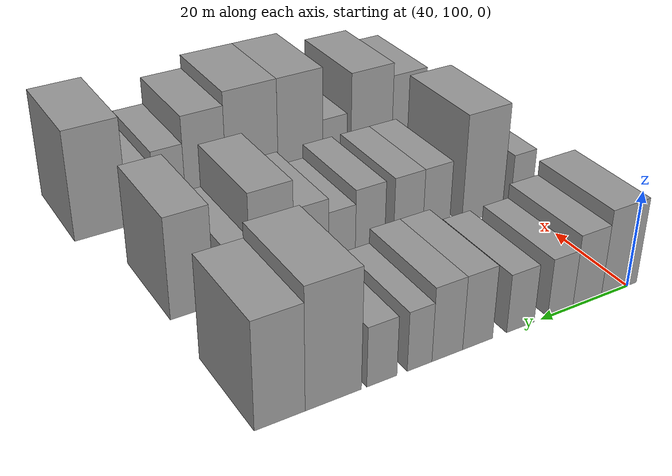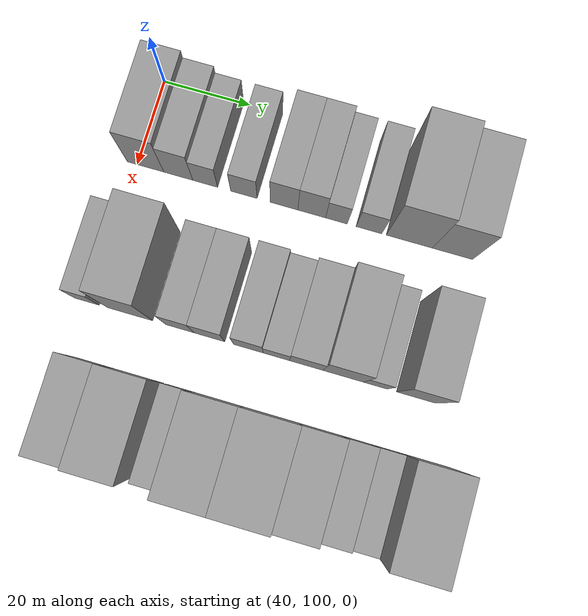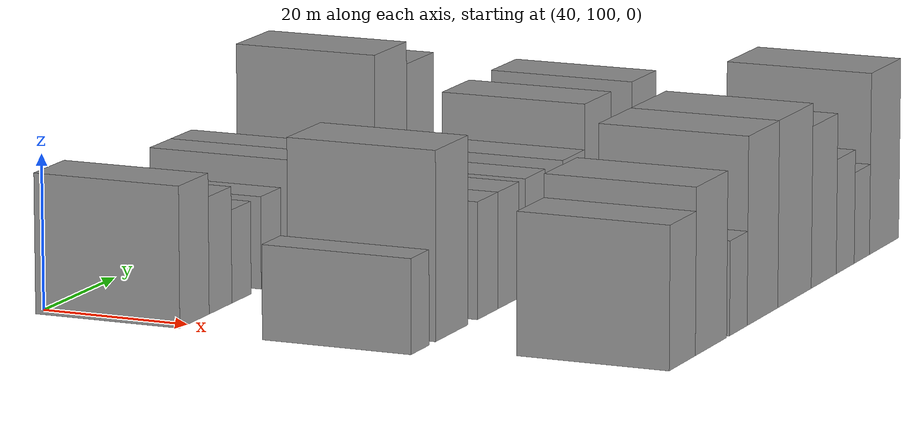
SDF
<sdf version="1.6">
 <world name="default">
  <model name="building_50">
   <static>1</static>
   <pose>50.0000 101.9920 0 0.000000 0.000000 0.000000</pose>
   <link name="link">
    <pose>0 0 9.00 0 0 0</pose>
    <collision name="collision"><geometry><box><size>20.0000 8.4146 18.0000</size></box></geometry></collision>
    <visual name="visual">
     <cast_shadows>0</cast_shadows>
     <geometry><box><size>20.0000 8.4146 18.0000</size></box></geometry>
     <material>
      <script>
       <uri>model://grey_wall/materials/scripts</uri>
       <uri>model://grey_wall/materials/textures</uri>
       <name>vrc/grey_wall</name>
      </script>
     </material>
    </visual>
   </link>
  </model>
  <model name="building_51">
   <static>1</static>
   <pose>50.0000 109.5094 0 0.000000 0.000000 0.000000</pose>
   <link name="link">
    <pose>0 0 7.50 0 0 0</pose>
    <collision name="collision"><geometry><box><size>20.0000 6.6202 15.0000</size></box></geometry></collision>
    <visual name="visual">
     <cast_shadows>0</cast_shadows>
     <geometry><box><size>20.0000 6.6202 15.0000</size></box></geometry>
     <material>
      <script>
       <uri>model://grey_wall/materials/scripts</uri>
       <uri>model://grey_wall/materials/textures</uri>
       <name>vrc/grey_wall</name>
      </script>
     </material>
    </visual>
   </link>
  </model>
  <model name="building_52">
   <static>1</static>
   <pose>50.0000 115.6537 0 0.000000 0.000000 0.000000</pose>
   <link name="link">
    <pose>0 0 6.00 0 0 0</pose>
    <collision name="collision"><geometry><box><size>20.0000 5.6683 12.0000</size></box></geometry></collision>
    <visual name="visual">
     <cast_shadows>0</cast_shadows>
     <geometry><box><size>20.0000 5.6683 12.0000</size></box></geometry>
     <material>
      <script>
       <uri>model://grey_wall/materials/scripts</uri>
       <uri>model://grey_wall/materials/textures</uri>
       <name>vrc/grey_wall</name>
      </script>
     </material>
    </visual>
   </link>
  </model>
  <model name="building_53">
   <static>1</static>
   <pose>50.0000 124.4864 0 0.000000 0.000000 0.000000</pose>
   <link name="link">
    <pose>0 0 6.00 0 0 0</pose>
    <collision name="collision"><geometry><box><size>20.0000 5.9971 12.0000</size></box></geometry></collision>
    <visual name="visual">
     <cast_shadows>0</cast_shadows>
     <geometry><box><size>20.0000 5.9971 12.0000</size></box></geometry>
     <material>
      <script>
       <uri>model://grey_wall/materials/scripts</uri>
       <uri>model://grey_wall/materials/textures</uri>
       <name>vrc/grey_wall</name>
      </script>
     </material>
    </visual>
   </link>
  </model>
  <model name="building_54">
   <static>1</static>
   <pose>50.0000 133.6102 0 0.000000 0.000000 0.000000</pose>
   <link name="link">
    <pose>0 0 7.50 0 0 0</pose>
    <collision name="collision"><geometry><box><size>20.0000 6.2505 15.0000</size></box></geometry></collision>
    <visual name="visual">
     <cast_shadows>0</cast_shadows>
     <geometry><box><size>20.0000 6.2505 15.0000</size></box></geometry>
     <material>
      <script>
       <uri>model://grey_wall/materials/scripts</uri>
       <uri>model://grey_wall/materials/textures</uri>
       <name>vrc/grey_wall</name>
      </script>
     </material>
    </visual>
   </link>
  </model>
  <model name="building_55">
   <static>1</static>
   <pose>50.0000 139.8593 0 0.000000 0.000000 0.000000</pose>
   <link name="link">
    <pose>0 0 7.50 0 0 0</pose>
    <collision name="collision"><geometry><box><size>20.0000 6.2476 15.0000</size></box></geometry></collision>
    <visual name="visual">
     <cast_shadows>0</cast_shadows>
     <geometry><box><size>20.0000 6.2476 15.0000</size></box></geometry>
     <material>
      <script>
       <uri>model://grey_wall/materials/scripts</uri>
       <uri>model://grey_wall/materials/textures</uri>
       <name>vrc/grey_wall</name>
      </script>
     </material>
    </visual>
   </link>
  </model>
  <model name="building_56">
   <static>1</static>
   <pose>50.0000 145.4303 0 0.000000 0.000000 0.000000</pose>
   <link name="link">
    <pose>0 0 6.00 0 0 0</pose>
    <collision name="collision"><geometry><box><size>20.0000 4.8945 12.0000</size></box></geometry></collision>
    <visual name="visual">
     <cast_shadows>0</cast_shadows>
     <geometry><box><size>20.0000 4.8945 12.0000</size></box></geometry>
     <material>
      <script>
       <uri>model://grey_wall/materials/scripts</uri>
       <uri>model://grey_wall/materials/textures</uri>
       <name>vrc/grey_wall</name>
      </script>
     </material>
    </visual>
   </link>
  </model>
  <model name="building_57">
   <static>1</static>
   <pose>50.0000 152.7708 0 0.000000 0.000000 0.000000</pose>
   <link name="link">
    <pose>0 0 6.00 0 0 0</pose>
    <collision name="collision"><geometry><box><size>20.0000 5.7866 12.0000</size></box></geometry></collision>
    <visual name="visual">
     <cast_shadows>0</cast_shadows>
     <geometry><box><size>20.0000 5.7866 12.0000</size></box></geometry>
     <material>
      <script>
       <uri>model://grey_wall/materials/scripts</uri>
       <uri>model://grey_wall/materials/textures</uri>
       <name>vrc/grey_wall</name>
      </script>
     </material>
    </visual>
   </link>
  </model>
  <model name="building_58">
   <static>1</static>
   <pose>50.0000 161.8327 0 0.000000 0.000000 0.000000</pose>
   <link name="link">
    <pose>0 0 12.00 0 0 0</pose>
    <collision name="collision"><geometry><box><size>20.0000 10.3371 24.0000</size></box></geometry></collision>
    <visual name="visual">
     <cast_shadows>0</cast_shadows>
     <geometry><box><size>20.0000 10.3371 24.0000</size></box></geometry>
     <material>
      <script>
       <uri>model://grey_wall/materials/scripts</uri>
       <uri>model://grey_wall/materials/textures</uri>
       <name>vrc/grey_wall</name>
      </script>
     </material>
    </visual>
   </link>
  </model>
  <model name="building_59">
   <static>1</static>
   <pose>50.0000 171.4739 0 0.000000 0.000000 0.000000</pose>
   <link name="link">
    <pose>0 0 10.50 0 0 0</pose>
    <collision name="collision"><geometry><box><size>20.0000 8.9453 21.0000</size></box></geometry></collision>
    <visual name="visual">
     <cast_shadows>0</cast_shadows>
     <geometry><box><size>20.0000 8.9453 21.0000</size></box></geometry>
     <material>
      <script>
       <uri>model://grey_wall/materials/scripts</uri>
       <uri>model://grey_wall/materials/textures</uri>
       <name>vrc/grey_wall</name>
      </script>
     </material>
    </visual>
   </link>
  </model>
  <model name="building_131">
   <static>1</static>
   <pose>82.0000 99.0028 0 0.000000 0.000000 0.000000</pose>
   <link name="link">
    <pose>0 0 6.00 0 0 0</pose>
    <collision name="collision"><geometry><box><size>20.0000 5.4487 12.0000</size></box></geometry></collision>
    <visual name="visual">
     <cast_shadows>0</cast_shadows>
     <geometry><box><size>20.0000 5.4487 12.0000</size></box></geometry>
     <material>
      <script>
       <uri>model://grey_wall/materials/scripts</uri>
       <uri>model://grey_wall/materials/textures</uri>
       <name>vrc/grey_wall</name>
      </script>
     </material>
    </visual>
   </link>
  </model>
  <model name="building_132">
   <static>1</static>
   <pose>82.0000 108.7247 0 0.000000 0.000000 0.000000</pose>
   <link name="link">
    <pose>0 0 12.00 0 0 0</pose>
    <collision name="collision"><geometry><box><size>20.0000 9.9951 24.0000</size></box></geometry></collision>
    <visual name="visual">
     <cast_shadows>0</cast_shadows>
     <geometry><box><size>20.0000 9.9951 24.0000</size></box></geometry>
     <material>
      <script>
       <uri>model://grey_wall/materials/scripts</uri>
       <uri>model://grey_wall/materials/textures</uri>
       <name>vrc/grey_wall</name>
      </script>
     </material>
    </visual>
   </link>
  </model>
  <model name="building_133">
   <static>1</static>
   <pose>82.0000 119.8972 0 0.000000 0.000000 0.000000</pose>
   <link name="link">
    <pose>0 0 7.50 0 0 0</pose>
    <collision name="collision"><geometry><box><size>20.0000 6.3500 15.0000</size></box></geometry></collision>
    <visual name="visual">
     <cast_shadows>0</cast_shadows>
     <geometry><box><size>20.0000 6.3500 15.0000</size></box></geometry>
     <material>
      <script>
       <uri>model://grey_wall/materials/scripts</uri>
       <uri>model://grey_wall/materials/textures</uri>
       <name>vrc/grey_wall</name>
      </script>
     </material>
    </visual>
   </link>
  </model>
  <model name="building_134">
   <static>1</static>
   <pose>82.0000 126.4365 0 0.000000 0.000000 0.000000</pose>
   <link name="link">
    <pose>0 0 7.50 0 0 0</pose>
    <collision name="collision"><geometry><box><size>20.0000 6.7286 15.0000</size></box></geometry></collision>
    <visual name="visual">
     <cast_shadows>0</cast_shadows>
     <geometry><box><size>20.0000 6.7286 15.0000</size></box></geometry>
     <material>
      <script>
       <uri>model://grey_wall/materials/scripts</uri>
       <uri>model://grey_wall/materials/textures</uri>
       <name>vrc/grey_wall</name>
      </script>
     </material>
    </visual>
   </link>
  </model>
  <model name="building_135">
   <static>1</static>
   <pose>82.0000 135.0624 0 0.000000 0.000000 0.000000</pose>
   <link name="link">
    <pose>0 0 7.50 0 0 0</pose>
    <collision name="collision"><geometry><box><size>20.0000 6.5232 15.0000</size></box></geometry></collision>
    <visual name="visual">
     <cast_shadows>0</cast_shadows>
     <geometry><box><size>20.0000 6.5232 15.0000</size></box></geometry>
     <material>
      <script>
       <uri>model://grey_wall/materials/scripts</uri>
       <uri>model://grey_wall/materials/textures</uri>
       <name>vrc/grey_wall</name>
      </script>
     </material>
    </visual>
   </link>
  </model>
  <model name="building_136">
   <static>1</static>
   <pose>82.0000 141.2162 0 0.000000 0.000000 0.000000</pose>
   <link name="link">
    <pose>0 0 6.00 0 0 0</pose>
    <collision name="collision"><geometry><box><size>20.0000 5.7842 12.0000</size></box></geometry></collision>
    <visual name="visual">
     <cast_shadows>0</cast_shadows>
     <geometry><box><size>20.0000 5.7842 12.0000</size></box></geometry>
     <material>
      <script>
       <uri>model://grey_wall/materials/scripts</uri>
       <uri>model://grey_wall/materials/textures</uri>
       <name>vrc/grey_wall</name>
      </script>
     </material>
    </visual>
   </link>
  </model>
  <model name="building_137">
   <static>1</static>
   <pose>82.0000 147.7558 0 0.000000 0.000000 0.000000</pose>
   <link name="link">
    <pose>0 0 7.50 0 0 0</pose>
    <collision name="collision"><geometry><box><size>20.0000 7.2950 15.0000</size></box></geometry></collision>
    <visual name="visual">
     <cast_shadows>0</cast_shadows>
     <geometry><box><size>20.0000 7.2950 15.0000</size></box></geometry>
     <material>
      <script>
       <uri>model://grey_wall/materials/scripts</uri>
       <uri>model://grey_wall/materials/textures</uri>
       <name>vrc/grey_wall</name>
      </script>
     </material>
    </visual>
   </link>
  </model>
  <model name="building_138">
   <static>1</static>
   <pose>82.0000 155.8484 0 0.000000 0.000000 0.000000</pose>
   <link name="link">
    <pose>0 0 10.50 0 0 0</pose>
    <collision name="collision"><geometry><box><size>20.0000 8.8904 21.0000</size></box></geometry></collision>
    <visual name="visual">
     <cast_shadows>0</cast_shadows>
     <geometry><box><size>20.0000 8.8904 21.0000</size></box></geometry>
     <material>
      <script>
       <uri>model://grey_wall/materials/scripts</uri>
       <uri>model://grey_wall/materials/textures</uri>
       <name>vrc/grey_wall</name>
      </script>
     </material>
    </visual>
   </link>
  </model>
  <model name="building_139">
   <static>1</static>
   <pose>82.0000 162.9040 0 0.000000 0.000000 0.000000</pose>
   <link name="link">
    <pose>0 0 6.00 0 0 0</pose>
    <collision name="collision"><geometry><box><size>20.0000 5.2207 12.0000</size></box></geometry></collision>
    <visual name="visual">
     <cast_shadows>0</cast_shadows>
     <geometry><box><size>20.0000 5.2207 12.0000</size></box></geometry>
     <material>
      <script>
       <uri>model://grey_wall/materials/scripts</uri>
       <uri>model://grey_wall/materials/textures</uri>
       <name>vrc/grey_wall</name>
      </script>
     </material>
    </visual>
   </link>
  </model>
  <model name="building_140">
   <static>1</static>
   <pose>82.0000 171.7312 0 0.000000 0.000000 0.000000</pose>
   <link name="link">
    <pose>0 0 10.50 0 0 0</pose>
    <collision name="collision"><geometry><box><size>20.0000 8.4339 21.0000</size></box></geometry></collision>
    <visual name="visual">
     <cast_shadows>0</cast_shadows>
     <geometry><box><size>20.0000 8.4339 21.0000</size></box></geometry>
     <material>
      <script>
       <uri>model://grey_wall/materials/scripts</uri>
       <uri>model://grey_wall/materials/textures</uri>
       <name>vrc/grey_wall</name>
      </script>
     </material>
    </visual>
   </link>
  </model>
  <model name="building_206">
   <static>1</static>
   <pose>114.0000 105.2028 0 0.000000 0.000000 0.000000</pose>
   <link name="link">
    <pose>0 0 9.00 0 0 0</pose>
    <collision name="collision"><geometry><box><size>20.0000 8.5667 18.0000</size></box></geometry></collision>
    <visual name="visual">
     <cast_shadows>0</cast_shadows>
     <geometry><box><size>20.0000 8.5667 18.0000</size></box></geometry>
     <material>
      <script>
       <uri>model://grey_wall/materials/scripts</uri>
       <uri>model://grey_wall/materials/textures</uri>
       <name>vrc/grey_wall</name>
      </script>
     </material>
    </visual>
   </link>
  </model>
  <model name="building_207">
   <static>1</static>
   <pose>114.0000 114.7116 0 0.000000 0.000000 0.000000</pose>
   <link name="link">
    <pose>0 0 10.50 0 0 0</pose>
    <collision name="collision"><geometry><box><size>20.0000 10.4510 21.0000</size></box></geometry></collision>
    <visual name="visual">
     <cast_shadows>0</cast_shadows>
     <geometry><box><size>20.0000 10.4510 21.0000</size></box></geometry>
     <material>
      <script>
       <uri>model://grey_wall/materials/scripts</uri>
       <uri>model://grey_wall/materials/textures</uri>
       <name>vrc/grey_wall</name>
      </script>
     </material>
    </visual>
   </link>
  </model>
  <model name="building_208">
   <static>1</static>
   <pose>114.0000 123.9359 0 0.000000 0.000000 0.000000</pose>
   <link name="link">
    <pose>0 0 6.00 0 0 0</pose>
    <collision name="collision"><geometry><box><size>20.0000 5.9975 12.0000</size></box></geometry></collision>
    <visual name="visual">
     <cast_shadows>0</cast_shadows>
     <geometry><box><size>20.0000 5.9975 12.0000</size></box></geometry>
     <material>
      <script>
       <uri>model://grey_wall/materials/scripts</uri>
       <uri>model://grey_wall/materials/textures</uri>
       <name>vrc/grey_wall</name>
      </script>
     </material>
    </visual>
   </link>
  </model>
  <model name="building_209">
   <static>1</static>
   <pose>114.0000 132.2579 0 0.000000 0.000000 0.000000</pose>
   <link name="link">
    <pose>0 0 12.00 0 0 0</pose>
    <collision name="collision"><geometry><box><size>20.0000 10.6464 24.0000</size></box></geometry></collision>
    <visual name="visual">
     <cast_shadows>0</cast_shadows>
     <geometry><box><size>20.0000 10.6464 24.0000</size></box></geometry>
     <material>
      <script>
       <uri>model://grey_wall/materials/scripts</uri>
       <uri>model://grey_wall/materials/textures</uri>
       <name>vrc/grey_wall</name>
      </script>
     </material>
    </visual>
   </link>
  </model>
  <model name="building_210">
   <static>1</static>
   <pose>114.0000 143.5419 0 0.000000 0.000000 0.000000</pose>
   <link name="link">
    <pose>0 0 12.00 0 0 0</pose>
    <collision name="collision"><geometry><box><size>20.0000 11.9215 24.0000</size></box></geometry></collision>
    <visual name="visual">
     <cast_shadows>0</cast_shadows>
     <geometry><box><size>20.0000 11.9215 24.0000</size></box></geometry>
     <material>
      <script>
       <uri>model://grey_wall/materials/scripts</uri>
       <uri>model://grey_wall/materials/textures</uri>
       <name>vrc/grey_wall</name>
      </script>
     </material>
    </visual>
   </link>
  </model>
  <model name="building_211">
   <static>1</static>
   <pose>114.0000 154.0394 0 0.000000 0.000000 0.000000</pose>
   <link name="link">
    <pose>0 0 10.50 0 0 0</pose>
    <collision name="collision"><geometry><box><size>20.0000 9.0735 21.0000</size></box></geometry></collision>
    <visual name="visual">
     <cast_shadows>0</cast_shadows>
     <geometry><box><size>20.0000 9.0735 21.0000</size></box></geometry>
     <material>
      <script>
       <uri>model://grey_wall/materials/scripts</uri>
       <uri>model://grey_wall/materials/textures</uri>
       <name>vrc/grey_wall</name>
      </script>
     </material>
    </visual>
   </link>
  </model>
  <model name="building_212">
   <static>1</static>
   <pose>114.0000 161.9000 0 0.000000 0.000000 0.000000</pose>
   <link name="link">
    <pose>0 0 7.50 0 0 0</pose>
    <collision name="collision"><geometry><box><size>20.0000 6.6476 15.0000</size></box></geometry></collision>
    <visual name="visual">
     <cast_shadows>0</cast_shadows>
     <geometry><box><size>20.0000 6.6476 15.0000</size></box></geometry>
     <material>
      <script>
       <uri>model://grey_wall/materials/scripts</uri>
       <uri>model://grey_wall/materials/textures</uri>
       <name>vrc/grey_wall</name>
      </script>
     </material>
    </visual>
   </link>
  </model>
  <model name="building_213">
   <static>1</static>
   <pose>114.0000 168.0731 0 0.000000 0.000000 0.000000</pose>
   <link name="link">
    <pose>0 0 6.00 0 0 0</pose>
    <collision name="collision"><geometry><box><size>20.0000 5.6986 12.0000</size></box></geometry></collision>
    <visual name="visual">
     <cast_shadows>0</cast_shadows>
     <geometry><box><size>20.0000 5.6986 12.0000</size></box></geometry>
     <material>
      <script>
       <uri>model://grey_wall/materials/scripts</uri>
       <uri>model://grey_wall/materials/textures</uri>
       <name>vrc/grey_wall</name>
      </script>
     </material>
    </visual>
   </link>
  </model>
  <model name="building_214">
   <static>1</static>
   <pose>114.0000 176.4763 0 0.000000 0.000000 0.000000</pose>
   <link name="link">
    <pose>0 0 12.00 0 0 0</pose>
    <collision name="collision"><geometry><box><size>20.0000 11.1077 24.0000</size></box></geometry></collision>
    <visual name="visual">
     <cast_shadows>0</cast_shadows>
     <geometry><box><size>20.0000 11.1077 24.0000</size></box></geometry>
     <material>
      <script>
       <uri>model://grey_wall/materials/scripts</uri>
       <uri>model://grey_wall/materials/textures</uri>
       <name>vrc/grey_wall</name>
      </script>
     </material>
    </visual>
   </link>
  </model>
 </world>
</sdf>
